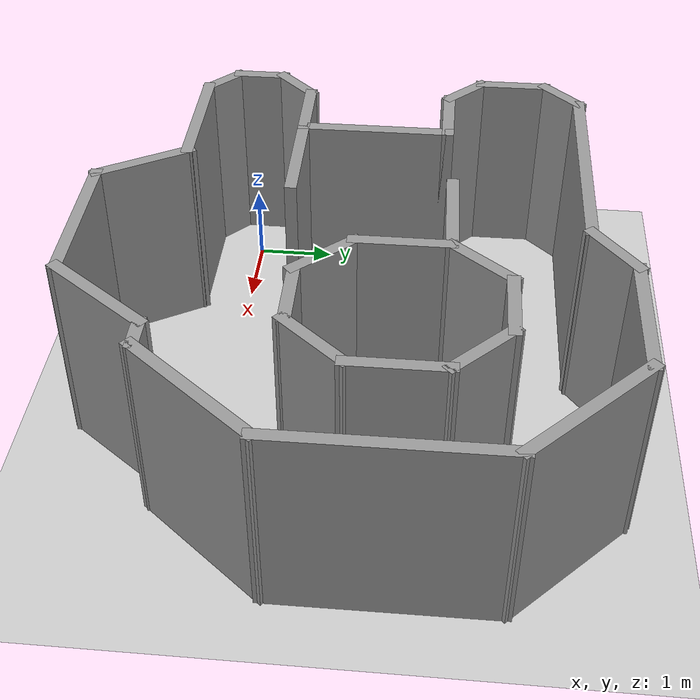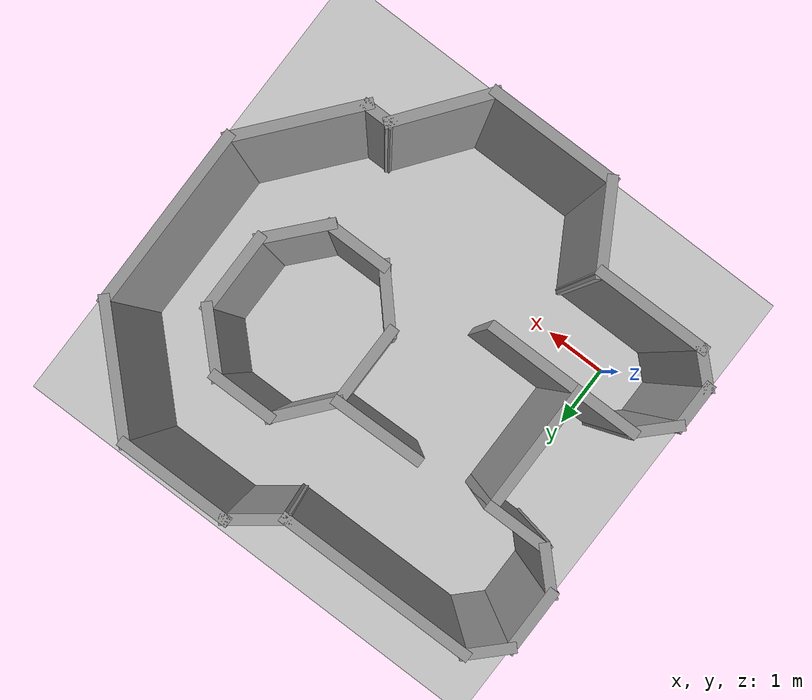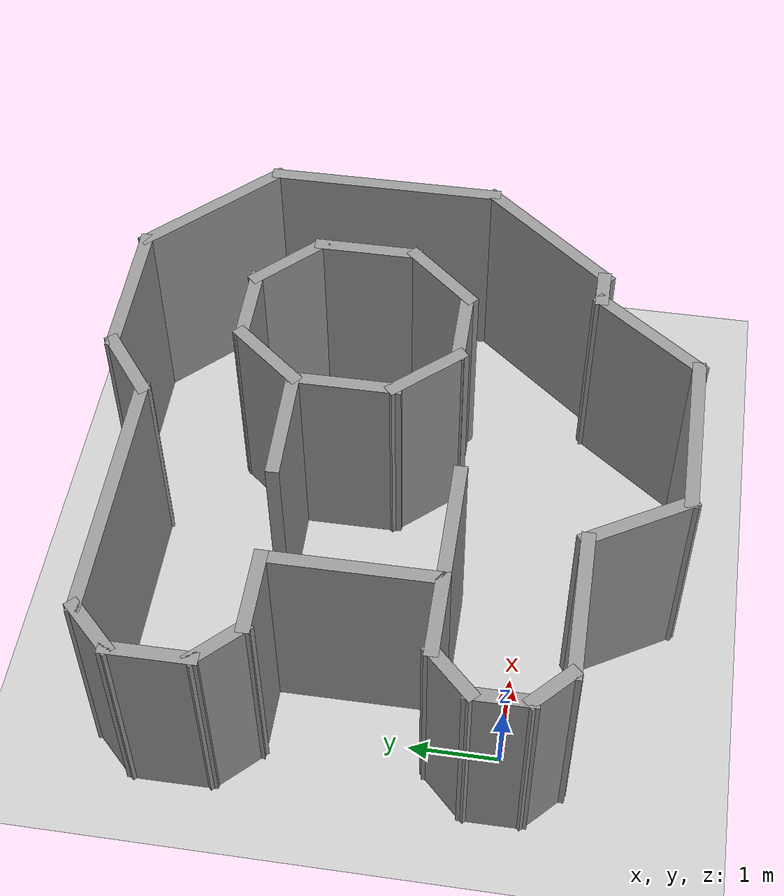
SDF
<sdf version="1.7">
 <world name="default">
  <light name="sun" type="directional">
   <pose>0 0 10 0 -0 0</pose>
   <diffuse>0.8 0.8 0.8 1</diffuse>
   <specular>0.2 0.2 0.2 1</specular>
   <attenuation>
    <range>1000</range>
    <constant>0.9</constant>
    <linear>0.01</linear>
    <quadratic>0.001</quadratic>
   </attenuation>
   <direction>-0.5 0.1 -0.9</direction>
   <spot><inner_angle>0</inner_angle><outer_angle>0</outer_angle><falloff>0</falloff></spot>
  </light>
  <model name="ground_plane">
   <static>1</static>
   <link name="link">
    <collision name="collision">
     <geometry><plane><normal>0 0 1</normal><size>100 100</size></plane></geometry>
     <surface><friction><ode><mu>100</mu><mu2>50</mu2></ode></friction></surface>
    </collision>
    <visual name="visual">
     <cast_shadows>0</cast_shadows>
     <geometry><plane><normal>0 0 1</normal><size>100 100</size></plane></geometry>
     <material>
      <script><uri>file://media/materials/scripts/gazebo.material</uri><name>Gazebo/Grey</name></script>
     </material>
    </visual>
   </link>
  </model>
  <gravity>0 0 -9.8</gravity>
  <magnetic_field>6e-06 2.3e-05 -4.2e-05</magnetic_field>
  <atmosphere type="adiabatic"/>
  <physics type="ode">
   <max_step_size>0.001</max_step_size>
   <real_time_factor>1</real_time_factor>
   <real_time_update_rate>1000</real_time_update_rate>
  </physics>
  <scene><ambient>0.4 0.4 0.4 1</ambient><background>0.7 0.7 0.7 1</background><shadows>1</shadows></scene>
  <audio><device>default</device></audio>
  <spherical_coordinates>
   <surface_model>EARTH_WGS84</surface_model>
   <latitude_deg>0</latitude_deg>
   <longitude_deg>0</longitude_deg>
   <elevation>0</elevation>
   <heading_deg>0</heading_deg>
  </spherical_coordinates>
  <model name="amogus">
   <pose>2.6945 1.56081 0 0 0 -1.56552</pose>
   <link name="Wall_21">
    <collision name="Wall_21_Collision">
     <geometry><box><size>3 0.15 2.5</size></box></geometry>
     <pose>0 0 1.25 0 -0 0</pose>
    </collision>
    <visual name="Wall_21_Visual">
     <pose>0 0 1.25 0 -0 0</pose>
     <geometry><box><size>3 0.15 2.5</size></box></geometry>
     <material>
      <script><uri>file://media/materials/scripts/gazebo.material</uri><name>Gazebo/Grey</name></script>
      <ambient>1 1 1 1</ambient>
     </material>
     <meta><layer>0</layer></meta>
    </visual>
    <pose>-2.73466 -1.55355 0 0 -0 -1.5708</pose>
   </link>
   <link name="Wall_22">
    <collision name="Wall_22_Collision">
     <geometry><box><size>0.75 0.15 2.5</size></box></geometry>
     <pose>0 0 1.25 0 -0 0</pose>
    </collision>
    <visual name="Wall_22_Visual">
     <pose>0 0 1.25 0 -0 0</pose>
     <geometry><box><size>0.75 0.15 2.5</size></box></geometry>
     <material>
      <script><uri>file://media/materials/scripts/gazebo.material</uri><name>Gazebo/Grey</name></script>
      <ambient>1 1 1 1</ambient>
     </material>
     <meta><layer>0</layer></meta>
    </visual>
    <pose>-2.52253 -3.19069 0 0 -0 -0.785398</pose>
   </link>
   <link name="Wall_24">
    <collision name="Wall_24_Collision">
     <geometry><box><size>1 0.15 2.5</size></box></geometry>
     <pose>0 0 1.25 0 -0 0</pose>
    </collision>
    <visual name="Wall_24_Visual">
     <pose>0 0 1.25 0 -0 0</pose>
     <geometry><box><size>1 0.15 2.5</size></box></geometry>
     <material>
      <script><uri>file://media/materials/scripts/gazebo.material</uri><name>Gazebo/Grey</name></script>
      <ambient>1 1 1 1</ambient>
     </material>
     <meta><layer>0</layer></meta>
    </visual>
    <pose>-1.8854 -3.40282 0 0 -0 0</pose>
   </link>
   <link name="Wall_25">
    <collision name="Wall_25_Collision">
     <geometry><box><size>0.75 0.15 2.5</size></box></geometry>
     <pose>0 0 1.25 0 -0 0</pose>
    </collision>
    <visual name="Wall_25_Visual">
     <pose>0 0 1.25 0 -0 0</pose>
     <geometry><box><size>0.75 0.15 2.5</size></box></geometry>
     <material>
      <script><uri>file://media/materials/scripts/gazebo.material</uri><name>Gazebo/Grey</name></script>
      <ambient>1 1 1 1</ambient>
     </material>
     <meta><layer>0</layer></meta>
    </visual>
    <pose>-1.24827 -3.19069 0 0 -0 0.785398</pose>
   </link>
   <link name="Wall_26">
    <collision name="Wall_26_Collision">
     <geometry><box><size>1 0.15 2.5</size></box></geometry>
     <pose>0 0 1.25 0 -0 0</pose>
    </collision>
    <visual name="Wall_26_Visual">
     <pose>0 0 1.25 0 -0 0</pose>
     <geometry><box><size>1 0.15 2.5</size></box></geometry>
     <material>
      <script><uri>file://media/materials/scripts/gazebo.material</uri><name>Gazebo/Grey</name></script>
      <ambient>1 1 1 1</ambient>
     </material>
     <meta><layer>0</layer></meta>
    </visual>
    <pose>-1.03613 -2.55355 0 0 -0 1.5708</pose>
   </link>
   <link name="Wall_27">
    <collision name="Wall_27_Collision">
     <geometry><box><size>2 0.15 2.5</size></box></geometry>
     <pose>0 0 1.25 0 -0 0</pose>
    </collision>
    <visual name="Wall_27_Visual">
     <pose>0 0 1.25 0 -0 0</pose>
     <geometry><box><size>2 0.15 2.5</size></box></geometry>
     <material>
      <script><uri>file://media/materials/scripts/gazebo.material</uri><name>Gazebo/Grey</name></script>
      <ambient>1 1 1 1</ambient>
     </material>
     <meta><layer>0</layer></meta>
    </visual>
    <pose>-0.111134 -2.12855 0 0 -0 0</pose>
   </link>
   <link name="Wall_28">
    <collision name="Wall_28_Collision">
     <geometry><box><size>1.00095 0.15 2.5</size></box></geometry>
     <pose>0 0 1.25 0 -0 0</pose>
    </collision>
    <visual name="Wall_28_Visual">
     <pose>0 0 1.25 0 -0 0</pose>
     <geometry><box><size>1.00095 0.15 2.5</size></box></geometry>
     <material>
      <script><uri>file://media/materials/scripts/gazebo.material</uri><name>Gazebo/Grey</name></script>
      <ambient>1 1 1 1</ambient>
     </material>
     <meta><layer>0</layer></meta>
    </visual>
    <pose>0.813866 -2.55355 0 0 -0 -1.5708</pose>
   </link>
   <link name="Wall_29">
    <collision name="Wall_29_Collision">
     <geometry><box><size>0.75 0.15 2.5</size></box></geometry>
     <pose>0 0 1.25 0 -0 0</pose>
    </collision>
    <visual name="Wall_29_Visual">
     <pose>0 0 1.25 0 -0 0</pose>
     <geometry><box><size>0.75 0.15 2.5</size></box></geometry>
     <material>
      <script><uri>file://media/materials/scripts/gazebo.material</uri><name>Gazebo/Grey</name></script>
      <ambient>1 1 1 1</ambient>
     </material>
     <meta><layer>0</layer></meta>
    </visual>
    <pose>1.026 -3.19069 0 0 -0 -0.785398</pose>
   </link>
   <link name="Wall_41">
    <collision name="Wall_41_Collision">
     <geometry><box><size>1.75 0.15 2.5</size></box></geometry>
     <pose>0 0 1.25 0 -0 0</pose>
    </collision>
    <visual name="Wall_41_Visual">
     <pose>0 0 1.25 0 -0 0</pose>
     <geometry><box><size>1.75 0.15 2.5</size></box></geometry>
     <material>
      <script><uri>file://media/materials/scripts/gazebo.material</uri><name>Gazebo/Grey</name></script>
      <ambient>1 1 1 1</ambient>
     </material>
     <meta><layer>0</layer></meta>
    </visual>
    <pose>-3.21407 1.29467 0 0 -0 -1.5708</pose>
   </link>
   <link name="Wall_42">
    <collision name="Wall_42_Collision">
     <geometry><box><size>0.936281 0.15 2.5</size></box></geometry>
     <pose>0 0 1.25 0 -0 0</pose>
    </collision>
    <visual name="Wall_42_Visual">
     <pose>0 0 1.25 0 -0 0</pose>
     <geometry><box><size>0.936281 0.15 2.5</size></box></geometry>
     <material>
      <script><uri>file://media/materials/scripts/gazebo.material</uri><name>Gazebo/Grey</name></script>
      <ambient>1 1 1 1</ambient>
     </material>
     <meta><layer>0</layer></meta>
    </visual>
    <pose>-2.97437 0.183058 0 0 -0 -0.915096</pose>
   </link>
   <link name="Wall_44">
    <collision name="Wall_44_Collision">
     <geometry><box><size>1 0.15 2.5</size></box></geometry>
     <pose>0 0 1.25 0 -0 0</pose>
    </collision>
    <visual name="Wall_44_Visual">
     <pose>0 0 1.25 0 -0 0</pose>
     <geometry><box><size>1 0.15 2.5</size></box></geometry>
     <material>
      <script><uri>file://media/materials/scripts/gazebo.material</uri><name>Gazebo/Grey</name></script>
      <ambient>1 1 1 1</ambient>
     </material>
     <meta><layer>0</layer></meta>
    </visual>
    <pose>-1.82955 1.2619 0 0 -0 1.5708</pose>
   </link>
   <link name="Wall_45">
    <collision name="Wall_45_Collision">
     <geometry><box><size>1.05089 0.15 2.5</size></box></geometry>
     <pose>0 0 1.25 0 -0 0</pose>
    </collision>
    <visual name="Wall_45_Visual">
     <pose>0 0 1.25 0 -0 0</pose>
     <geometry><box><size>1.05089 0.15 2.5</size></box></geometry>
     <material>
      <script><uri>file://media/materials/scripts/gazebo.material</uri><name>Gazebo/Grey</name></script>
      <ambient>1 1 1 1</ambient>
     </material>
     <meta><layer>0</layer></meta>
    </visual>
    <pose>-1.51104 1.9853 0 0 -0 0.785398</pose>
   </link>
   <link name="Wall_46">
    <collision name="Wall_46_Collision">
     <geometry><box><size>1.25 0.15 2.5</size></box></geometry>
     <pose>0 0 1.25 0 -0 0</pose>
    </collision>
    <visual name="Wall_46_Visual">
     <pose>0 0 1.25 0 -0 0</pose>
     <geometry><box><size>1.25 0.15 2.5</size></box></geometry>
     <material>
      <script><uri>file://media/materials/scripts/gazebo.material</uri><name>Gazebo/Grey</name></script>
      <ambient>1 1 1 1</ambient>
     </material>
     <meta><layer>0</layer></meta>
    </visual>
    <pose>-0.642529 2.30381 0 0 -0 0</pose>
   </link>
   <link name="Wall_47">
    <collision name="Wall_47_Collision">
     <geometry><box><size>1.08107 0.15 2.5</size></box></geometry>
     <pose>0 0 1.25 0 -0 0</pose>
    </collision>
    <visual name="Wall_47_Visual">
     <pose>0 0 1.25 0 -0 0</pose>
     <geometry><box><size>1.08107 0.15 2.5</size></box></geometry>
     <material>
      <script><uri>file://media/materials/scripts/gazebo.material</uri><name>Gazebo/Grey</name></script>
      <ambient>1 1 1 1</ambient>
     </material>
     <meta><layer>0</layer></meta>
    </visual>
    <pose>0.256153 1.99535 0 0 -0 -0.724259</pose>
   </link>
   <link name="Wall_48">
    <collision name="Wall_48_Collision">
     <geometry><box><size>1 0.15 2.5</size></box></geometry>
     <pose>0 0 1.25 0 -0 0</pose>
    </collision>
    <visual name="Wall_48_Visual">
     <pose>0 0 1.25 0 -0 0</pose>
     <geometry><box><size>1 0.15 2.5</size></box></geometry>
     <material>
      <script><uri>file://media/materials/scripts/gazebo.material</uri><name>Gazebo/Grey</name></script>
      <ambient>1 1 1 1</ambient>
     </material>
     <meta><layer>0</layer></meta>
    </visual>
    <pose>0.584721 1.2619 0 0 -0 -1.5708</pose>
   </link>
   <link name="Wall_51">
    <collision name="Wall_51_Collision">
     <geometry><box><size>1.3908 0.15 2.5</size></box></geometry>
     <pose>0 0 1.25 0 -0 0</pose>
    </collision>
    <visual name="Wall_51_Visual">
     <pose>0 0 1.25 0 -0 0</pose>
     <geometry><box><size>1.3908 0.15 2.5</size></box></geometry>
     <material>
      <script><uri>file://media/materials/scripts/gazebo.material</uri><name>Gazebo/Grey</name></script>
      <ambient>1 1 1 1</ambient>
     </material>
     <meta><layer>0</layer></meta>
    </visual>
    <pose>-1.13563 -0.37304 0 0 -0 1.587</pose>
   </link>
   <link name="Wall_53">
    <collision name="Wall_53_Collision">
     <geometry><box><size>1.5 0.15 2.5</size></box></geometry>
     <pose>0 0 1.25 0 -0 0</pose>
    </collision>
    <visual name="Wall_53_Visual">
     <pose>0 0 1.25 0 -0 0</pose>
     <geometry><box><size>1.5 0.15 2.5</size></box></geometry>
     <material>
      <script><uri>file://media/materials/scripts/gazebo.material</uri><name>Gazebo/Grey</name></script>
      <ambient>1 1 1 1</ambient>
     </material>
     <meta><layer>0</layer></meta>
    </visual>
    <pose>0.813866 -1.45355 0 0 -0 -1.5708</pose>
   </link>
   <link name="Wall_55">
    <collision name="Wall_55_Collision">
     <geometry><box><size>1.0399 0.15 2.5</size></box></geometry>
     <pose>0 0 1.25 0 -0 0</pose>
    </collision>
    <visual name="Wall_55_Visual">
     <pose>0 0 1.25 0 -0 0</pose>
     <geometry><box><size>1.0399 0.15 2.5</size></box></geometry>
     <material>
      <script><uri>file://media/materials/scripts/gazebo.material</uri><name>Gazebo/Grey</name></script>
      <ambient>1 1 1 1</ambient>
     </material>
     <meta><layer>0</layer></meta>
    </visual>
    <pose>-1.48762 0.532071 0 0 -0 -0.694343</pose>
   </link>
   <link name="Wall_56">
    <collision name="Wall_56_Collision">
     <geometry><box><size>1.25 0.15 2.5</size></box></geometry>
     <pose>0 0 1.25 0 -0 0</pose>
    </collision>
    <visual name="Wall_56_Visual">
     <pose>0 0 1.25 0 -0 0</pose>
     <geometry><box><size>1.25 0.15 2.5</size></box></geometry>
     <material>
      <script><uri>file://media/materials/scripts/gazebo.material</uri><name>Gazebo/Grey</name></script>
      <ambient>1 1 1 1</ambient>
     </material>
     <meta><layer>0</layer></meta>
    </visual>
    <pose>-0.575576 0.247358 0 0 -0 0</pose>
   </link>
   <link name="Wall_57">
    <collision name="Wall_57_Collision">
     <geometry><box><size>1.02792 0.15 2.5</size></box></geometry>
     <pose>0 0 1.25 0 -0 0</pose>
    </collision>
    <visual name="Wall_57_Visual">
     <pose>0 0 1.25 0 -0 0</pose>
     <geometry><box><size>1.02792 0.15 2.5</size></box></geometry>
     <material>
      <script><uri>file://media/materials/scripts/gazebo.material</uri><name>Gazebo/Grey</name></script>
      <ambient>1 1 1 1</ambient>
     </material>
     <meta><layer>0</layer></meta>
    </visual>
    <pose>0.279573 0.542128 0 0 -0 0.736259</pose>
   </link>
   <link name="Wall_59">
    <collision name="Wall_59_Collision">
     <geometry><box><size>0.75 0.15 2.5</size></box></geometry>
     <pose>0 0 1.25 0 -0 0</pose>
    </collision>
    <visual name="Wall_59_Visual">
     <pose>0 0 1.25 0 -0 0</pose>
     <geometry><box><size>0.75 0.15 2.5</size></box></geometry>
     <material>
      <script><uri>file://media/materials/scripts/gazebo.material</uri><name>Gazebo/Grey</name></script>
      <ambient>1 1 1 1</ambient>
     </material>
     <meta><layer>0</layer></meta>
    </visual>
    <pose>1.53813 -3.40282 0 0 -0 0</pose>
   </link>
   <link name="Wall_60">
    <collision name="Wall_60_Collision">
     <geometry><box><size>0.650645 0.15 2.5</size></box></geometry>
     <pose>0 0 1.25 0 -0 0</pose>
    </collision>
    <visual name="Wall_60_Visual">
     <pose>0 0 1.25 0 -0 0</pose>
     <geometry><box><size>0.650645 0.15 2.5</size></box></geometry>
     <material>
      <script><uri>file://media/materials/scripts/gazebo.material</uri><name>Gazebo/Grey</name></script>
      <ambient>1 1 1 1</ambient>
     </material>
     <meta><layer>0</layer></meta>
    </visual>
    <pose>2.01003 -3.22086 0 0 -0 0.81381</pose>
   </link>
   <link name="Wall_61">
    <collision name="Wall_61_Collision">
     <geometry><box><size>1.75 0.15 2.5</size></box></geometry>
     <pose>0 0 1.25 0 -0 0</pose>
    </collision>
    <visual name="Wall_61_Visual">
     <pose>0 0 1.25 0 -0 0</pose>
     <geometry><box><size>1.75 0.15 2.5</size></box></geometry>
     <material>
      <script><uri>file://media/materials/scripts/gazebo.material</uri><name>Gazebo/Grey</name></script>
      <ambient>1 1 1 1</ambient>
     </material>
     <meta><layer>0</layer></meta>
    </visual>
    <pose>2.20205 -2.23889 0 0 -0 1.5708</pose>
   </link>
   <link name="Wall_66">
    <collision name="Wall_66_Collision">
     <geometry><box><size>1.34991 0.15 2.5</size></box></geometry>
     <pose>0 0 1.25 0 -0 0</pose>
    </collision>
    <visual name="Wall_66_Visual">
     <pose>0 0 1.25 0 -0 0</pose>
     <geometry><box><size>1.34991 0.15 2.5</size></box></geometry>
     <material>
      <script><uri>file://media/materials/scripts/gazebo.material</uri><name>Gazebo/Grey</name></script>
      <ambient>1 1 1 1</ambient>
     </material>
     <meta><layer>0</layer></meta>
    </visual>
    <pose>2.69848 -1.13372 0 0 -0 0.533624</pose>
   </link>
   <link name="Wall_67">
    <collision name="Wall_67_Collision">
     <geometry><box><size>2 0.15 2.5</size></box></geometry>
     <pose>0 0 1.25 0 -0 0</pose>
    </collision>
    <visual name="Wall_67_Visual">
     <pose>0 0 1.25 0 -0 0</pose>
     <geometry><box><size>2 0.15 2.5</size></box></geometry>
     <material>
      <script><uri>file://media/materials/scripts/gazebo.material</uri><name>Gazebo/Grey</name></script>
      <ambient>1 1 1 1</ambient>
     </material>
     <meta><layer>0</layer></meta>
    </visual>
    <pose>3.21502 0.096447 0 0 -0 1.5708</pose>
   </link>
   <link name="Wall_71">
    <collision name="Wall_71_Collision">
     <geometry><box><size>2 0.15 2.5</size></box></geometry>
     <pose>0 0 1.25 0 -0 0</pose>
    </collision>
    <visual name="Wall_71_Visual">
     <pose>0 0 1.25 0 -0 0</pose>
     <geometry><box><size>2 0.15 2.5</size></box></geometry>
     <material>
      <script><uri>file://media/materials/scripts/gazebo.material</uri><name>Gazebo/Grey</name></script>
      <ambient>1 1 1 1</ambient>
     </material>
     <meta><layer>0</layer></meta>
    </visual>
    <pose>-2.55999 2.74874 0 0 -0 0.785398</pose>
   </link>
   <link name="Wall_73">
    <collision name="Wall_73_Collision">
     <geometry><box><size>2.75 0.15 2.5</size></box></geometry>
     <pose>0 0 1.25 0 -0 0</pose>
    </collision>
    <visual name="Wall_73_Visual">
     <pose>0 0 1.25 0 -0 0</pose>
     <geometry><box><size>2.75 0.15 2.5</size></box></geometry>
     <material>
      <script><uri>file://media/materials/scripts/gazebo.material</uri><name>Gazebo/Grey</name></script>
      <ambient>1 1 1 1</ambient>
     </material>
     <meta><layer>0</layer></meta>
    </visual>
    <pose>-0.605921 3.40282 0 0 -0 0</pose>
   </link>
   <link name="Wall_76">
    <collision name="Wall_76_Collision">
     <geometry><box><size>1.98551 0.15 2.5</size></box></geometry>
     <pose>0 0 1.25 0 -0 0</pose>
    </collision>
    <visual name="Wall_76_Visual">
     <pose>0 0 1.25 0 -0 0</pose>
     <geometry><box><size>1.98551 0.15 2.5</size></box></geometry>
     <material>
      <script><uri>file://media/materials/scripts/gazebo.material</uri><name>Gazebo/Grey</name></script>
      <ambient>1 1 1 1</ambient>
     </material>
     <meta><layer>0</layer></meta>
    </visual>
    <pose>1.40056 2.81702 0 0 -0 -0.692282</pose>
   </link>
   <link name="Wall_77">
    <collision name="Wall_77_Collision">
     <geometry><box><size>0.5 0.15 2.5</size></box></geometry>
     <pose>0 0 1.25 0 -0 0</pose>
    </collision>
    <visual name="Wall_77_Visual">
     <pose>0 0 1.25 0 -0 0</pose>
     <geometry><box><size>0.5 0.15 2.5</size></box></geometry>
     <material>
      <script><uri>file://media/materials/scripts/gazebo.material</uri><name>Gazebo/Grey</name></script>
      <ambient>1 1 1 1</ambient>
     </material>
     <meta><layer>0</layer></meta>
    </visual>
    <pose>2.08693 2.05622 0 0 -0 -1.5708</pose>
   </link>
   <link name="Wall_79">
    <collision name="Wall_79_Collision">
     <geometry><box><size>1.56838 0.15 2.5</size></box></geometry>
     <pose>0 0 1.25 0 -0 0</pose>
    </collision>
    <visual name="Wall_79_Visual">
     <pose>0 0 1.25 0 -0 0</pose>
     <geometry><box><size>1.56838 0.15 2.5</size></box></geometry>
     <material>
      <script><uri>file://media/materials/scripts/gazebo.material</uri><name>Gazebo/Grey</name></script>
      <ambient>1 1 1 1</ambient>
     </material>
     <meta><layer>0</layer></meta>
    </visual>
    <pose>2.65097 1.45133 0 0 -0 -0.651229</pose>
   </link>
   <static>1</static>
  </model>
 </world>
</sdf>
